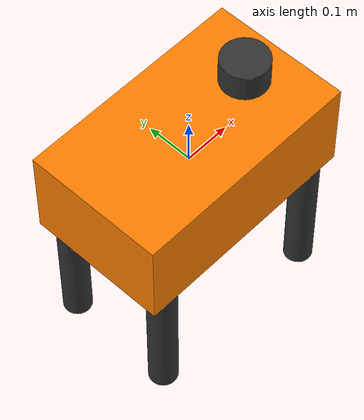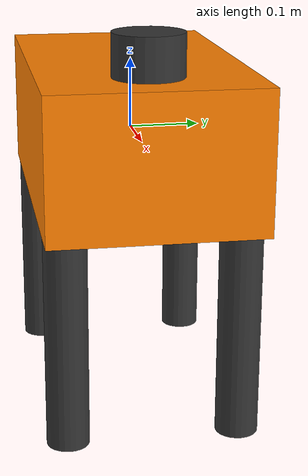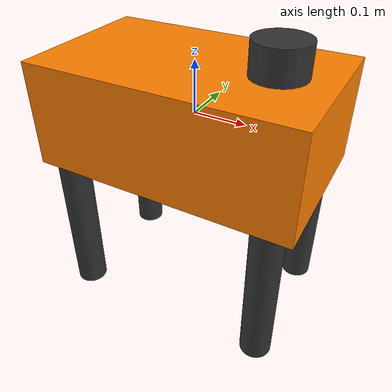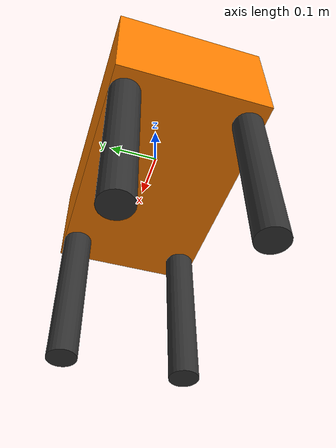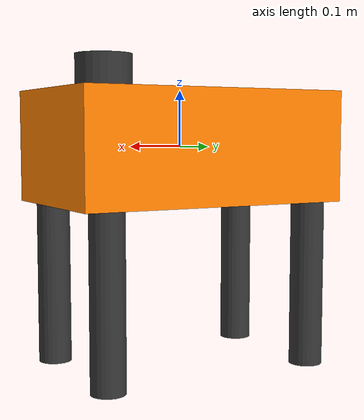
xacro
<?xml version="1.0"?>
<robot name="unitree_dog" xmlns:xacro="http://www.ros.org/wiki/xacro">

  <!-- Constants -->
  <xacro:property name="body_length" value="0.5"/>
  <xacro:property name="body_width" value="0.3"/>
  <xacro:property name="body_height" value="0.2"/>
  <xacro:property name="leg_radius" value="0.03"/>
  <xacro:property name="leg_length" value="0.3"/>
  <xacro:property name="mass" value="12.0"/>

  <material name="orange">
    <color rgba="1.0 0.5 0.0 1"/>
  </material>
  <material name="dark_grey">
    <color rgba="0.2 0.2 0.2 1"/>
  </material>

  <!-- Main Body -->
  <link name="base_link">
    <visual>
      <geometry>
        <box size="${body_length} ${body_width} ${body_height}"/>
      </geometry>
      <material name="orange"/>
    </visual>
    <collision>
      <geometry>
        <box size="${body_length} ${body_width} ${body_height}"/>
      </geometry>
    </collision>
    <inertial>
      <mass value="${mass}"/>
      <inertia ixx="0.1" ixy="0" ixz="0" iyy="0.1" iyz="0" izz="0.1"/>
    </inertial>
  </link>

  <!-- Simplified Legs (Fixed for multi-robot performance) -->
  <xacro:macro name="leg" params="name x y">
    <link name="${name}">
      <visual>
        <geometry>
          <cylinder radius="${leg_radius}" length="${leg_length}"/>
        </geometry>
        <material name="dark_grey"/>
      </visual>
      <collision>
        <geometry>
          <cylinder radius="${leg_radius}" length="${leg_length}"/>
        </geometry>
      </collision>
    </link>
    <joint name="${name}_joint" type="fixed">
      <parent link="base_link"/>
      <child link="${name}"/>
      <origin xyz="${x} ${y} -${body_height/2 + leg_length/2}"/>
    </joint>
  </xacro:macro>

  <xacro:leg name="front_left" x="0.2" y="0.12"/>
  <xacro:leg name="front_right" x="0.2" y="-0.12"/>
  <xacro:leg name="back_left" x="-0.2" y="0.12"/>
  <xacro:leg name="back_right" x="-0.2" y="-0.12"/>

  <!-- LiDAR Link -->
  <link name="lidar_link">
    <visual>
      <geometry>
        <cylinder radius="0.05" length="0.06"/>
      </geometry>
      <material name="dark_grey"/>
    </visual>
  </link>
  <joint name="lidar_joint" type="fixed">
    <parent link="base_link"/>
    <child link="lidar_link"/>
    <origin xyz="0.15 0 ${body_height/2 + 0.03}"/>
  </joint>

  <!-- Planar Move Plugin (Simulates quadruped movement without complex IK) -->
  <gazebo>
    <plugin name="planar_move" filename="libgazebo_ros_planar_move.so">
      <ros>
        <namespace>/</namespace>
      </ros>
      <update_rate>50</update_rate>
      <publish_odom>true</publish_odom>
      <publish_odom_tf>true</publish_odom_tf>
      <odometry_frame>odom</odometry_frame>
      <robot_base_frame>base_link</robot_base_frame>
    </plugin>
  </gazebo>

  <gazebo reference="lidar_link">
    <sensor name="lidar" type="ray">
      <always_on>true</always_on>
      <visualize>true</visualize>
      <update_rate>10</update_rate>
      <ray>
        <scan>
          <horizontal>
            <samples>360</samples>
            <resolution>1.0</resolution>
            <min_angle>0</min_angle>
            <max_angle>6.28</max_angle>
          </horizontal>
        </scan>
        <range>
          <min>0.3</min>
          <max>10.0</max>
        </range>
      </ray>
      <plugin name="scan" filename="libgazebo_ros_ray_sensor.so">
        <ros>
          <remapping>~/out:=scan</remapping>
        </ros>
        <output_type>sensor_msgs/LaserScan</output_type>
        <frame_name>lidar_link</frame_name>
      </plugin>
    </sensor>
  </gazebo>

</robot>
